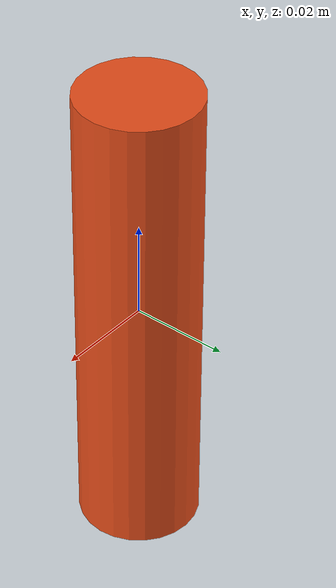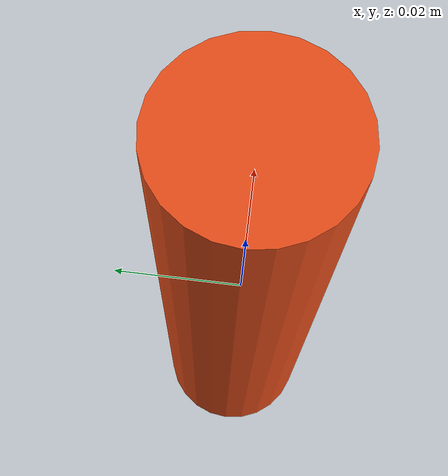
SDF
<?xml version="1.0" ?>
<sdf version="1.10">
  <model name="cilindro_25">
    <pose>0 0 0 0 0 0</pose>
    <link name="link">
      <inertial>
        <mass>0.05</mass>
        <inertia>
          <ixx>4.362e-5</ixx>
          <iyy>4.362e-5</iyy>
          <izz>3.906e-6</izz>
          <ixy>0</ixy>
          <ixz>0</ixz>
          <iyz>0</iyz>
        </inertia>
      </inertial>

      <collision name="collision">
        <geometry>
          <cylinder>
            <radius>0.0125</radius>
            <length>0.1</length>
          </cylinder>
        </geometry>
        <surface>
          <friction>
            <ode>
              <mu>1.0</mu>
              <mu2>1.0</mu2>
            </ode>
          </friction>
          <contact>
            <ode>
              <kp>1e6</kp>
              <kd>1e2</kd>
            </ode>
          </contact>
        </surface>
      </collision>

      <visual name="visual">
        <geometry>
          <cylinder>
            <radius>0.0125</radius>
            <length>0.1</length>
          </cylinder>
        </geometry>
        <material>
          <ambient>0.9 0.3 0.1 1</ambient>
          <diffuse>0.9 0.3 0.1 1</diffuse>
        </material>
      </visual>
    </link>
  </model>
</sdf>
